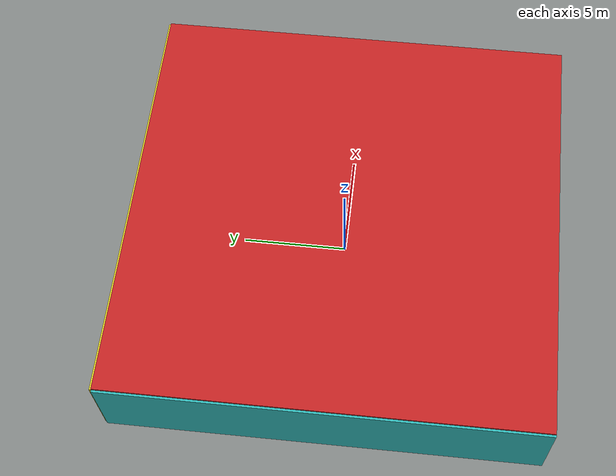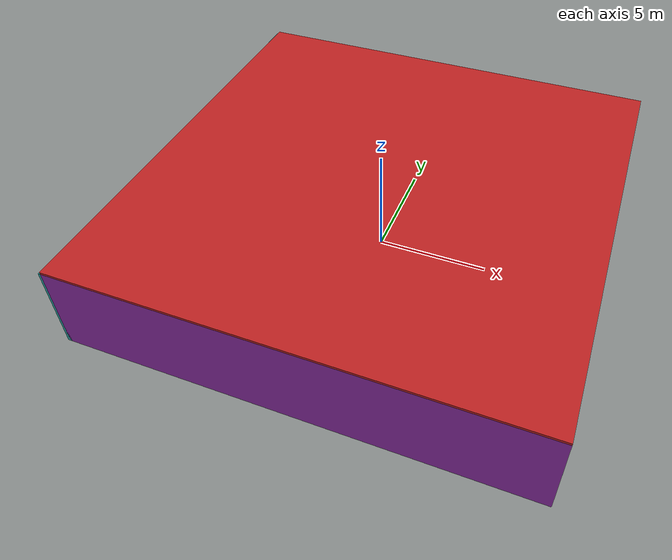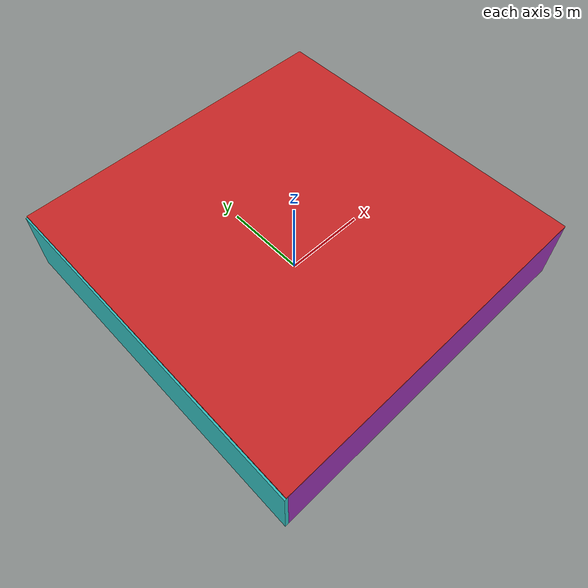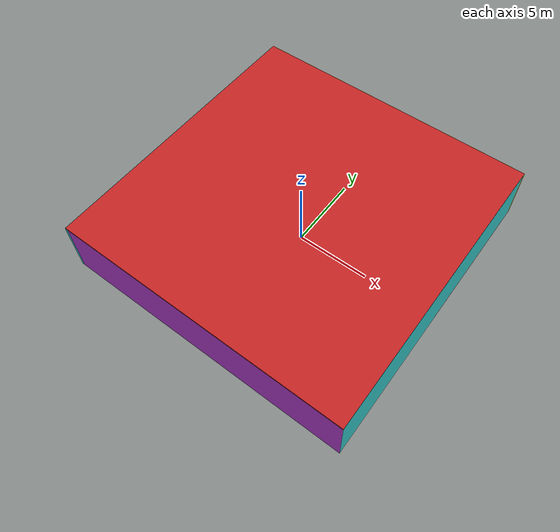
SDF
<sdf version="1.4">
 <world name="default">
  <physics type="ode">
   <max_step_size>0.001</max_step_size>
   <real_time_factor>1</real_time_factor>
   <real_time_update_rate>1000</real_time_update_rate>
   <gravity>0 0 -9.8</gravity>
  </physics>
  <scene><ambient>0.4 0.4 0.4 1</ambient><background>0.7 0.7 0.7 1</background><shadows>1</shadows></scene>
  <model name="Surrounding">
   <static>1</static>
   <link name="Ceiling">
    <collision name="Ceiling_Collision"><geometry><box><size>20 20 0.1</size></box></geometry></collision>
    <visual name="Ceiling_Visual">
     <geometry><box><size>20 20 0.1</size></box></geometry>
     <material>
      <script><uri>file://media/materials/scripts/gazebo.material</uri><name>Gazebo/Red</name></script>
     </material>
    </visual>
    <pose>0 0 4.05 0 0 0</pose>
   </link>
   <link name="Wall_South">
    <collision name="Wall_South_Collision">
     <geometry><box><size>20 0 4</size></box></geometry>
     <pose>0 0 2 0 -0 0</pose>
    </collision>
    <visual name="Wall_South_Visual">
     <pose>0 0 2 0 -0 0</pose>
     <geometry><box><size>20 0 4</size></box></geometry>
     <material>
      <script><uri>file://media/materials/scripts/gazebo.material</uri><name>Gazebo/Purple</name></script>
     </material>
    </visual>
    <velocity_decay><linear>0</linear><angular>0</angular></velocity_decay>
    <pose>0 -10 0 0 -0 0</pose>
   </link>
   <link name="Wall_East">
    <collision name="Wall_21_Collision">
     <geometry><box><size>20 0 4</size></box></geometry>
     <pose>0 0 2 0 -0 0</pose>
    </collision>
    <visual name="Wall_21_Visual">
     <pose>0 0 2 0 -0 0</pose>
     <geometry><box><size>20 0 4</size></box></geometry>
     <material>
      <script>
       <uri>file://media/materials/scripts/gazebo.material</uri>
       <name>Gazebo/TurquoiseGlowOutline</name>
      </script>
     </material>
    </visual>
    <velocity_decay><linear>0</linear><angular>0</angular></velocity_decay>
    <pose>10 0 0 0 -0 1.5708</pose>
   </link>
   <link name="Wall_North">
    <collision name="Wall_22_Collision">
     <geometry><box><size>20 0.2 4</size></box></geometry>
     <pose>0 0 2 0 -0 0</pose>
    </collision>
    <visual name="Wall_22_Visual">
     <pose>0 0 2 0 -0 0</pose>
     <geometry><box><size>20 0.2 4</size></box></geometry>
     <material>
      <script><uri>file://media/materials/scripts/gazebo.material</uri><name>Gazebo/Yellow</name></script>
     </material>
    </visual>
    <velocity_decay><linear>0</linear><angular>0</angular></velocity_decay>
    <pose>0 10 0 0 -0 0</pose>
   </link>
   <link name="Wall_West">
    <collision name="Wall_23_Collision">
     <geometry><box><size>20 0.2 4</size></box></geometry>
     <pose>0 0 2 0 -0 0</pose>
    </collision>
    <visual name="Wall_23_Visual">
     <pose>0 0 2 0 -0 0</pose>
     <geometry><box><size>20 0.2 4</size></box></geometry>
     <material>
      <script><uri>file://media/materials/scripts/gazebo.material</uri><name>Gazebo/TurquoiseGlow</name></script>
     </material>
    </visual>
    <velocity_decay><linear>0</linear><angular>0</angular></velocity_decay>
    <pose>-10 0 0 0 0 -1.5708</pose>
   </link>
   <link name="Ground_link">
    <collision name="collision">
     <pose>0 0 .05 0 -0 0</pose>
     <geometry><box><size>20 20 0.1</size></box></geometry>
    </collision>
    <visual name="visual">
     <pose>0 0 .05 0 -0 0</pose>
     <geometry><box><size>20 20 0.1</size></box></geometry>
     <material>
      <script><uri>file://media/materials/scripts/gazebo.material</uri><name>Gazebo/White</name></script>
     </material>
    </visual>
   </link>
   <static>1</static>
  </model>
  <spherical_coordinates>
   <surface_model>EARTH_WGS84</surface_model>
   <latitude_deg>0</latitude_deg>
   <longitude_deg>0</longitude_deg>
   <elevation>0</elevation>
   <heading_deg>0</heading_deg>
  </spherical_coordinates>
  <light name="lightball_0" type="diffuse">
   <diffuse>0.8 0.8 0.8 1</diffuse>
   <specular>0.2 0.2 0.2 1</specular>
   <attenuation>
    <range>100</range>
    <constant>0.7</constant>
    <linear>0.01</linear>
    <quadratic>0.001</quadratic>
   </attenuation>
   <direction>-0.5 0.1 -0.9</direction>
   <pose>-7.70413943704 4.99451639628 1.53148417981 0 0 0</pose>
  </light>
  <light name="lightball_1" type="diffuse">
   <diffuse>0.8 0.8 0.8 1</diffuse>
   <specular>0.2 0.2 0.2 1</specular>
   <attenuation>
    <range>100</range>
    <constant>0.7</constant>
    <linear>0.01</linear>
    <quadratic>0.001</quadratic>
   </attenuation>
   <direction>-0.5 0.1 -0.9</direction>
   <pose>7.04834642821 7.91387126275 3.18051801165 0 0 0</pose>
  </light>
  <light name="lightball_2" type="diffuse">
   <diffuse>0.8 0.8 0.8 1</diffuse>
   <specular>0.2 0.2 0.2 1</specular>
   <attenuation>
    <range>100</range>
    <constant>0.7</constant>
    <linear>0.01</linear>
    <quadratic>0.001</quadratic>
   </attenuation>
   <direction>-0.5 0.1 -0.9</direction>
   <pose>4.39726491051 -3.23151023774 1.29022352144 0 0 0</pose>
  </light>
  <light name="lightball_3" type="diffuse">
   <diffuse>0.8 0.8 0.8 1</diffuse>
   <specular>0.2 0.2 0.2 1</specular>
   <attenuation>
    <range>100</range>
    <constant>0.7</constant>
    <linear>0.01</linear>
    <quadratic>0.001</quadratic>
   </attenuation>
   <direction>-0.5 0.1 -0.9</direction>
   <pose>-1.62037810263 5.85066471919 1.69133503747 0 0 0</pose>
  </light>
  <light name="lightball_4" type="diffuse">
   <diffuse>0.8 0.8 0.8 1</diffuse>
   <specular>0.2 0.2 0.2 1</specular>
   <attenuation>
    <range>100</range>
    <constant>0.7</constant>
    <linear>0.01</linear>
    <quadratic>0.001</quadratic>
   </attenuation>
   <direction>-0.5 0.1 -0.9</direction>
   <pose>-8.66460660316 9.34199065034 3.34016011213 0 0 0</pose>
  </light>
  <light name="lightball_5" type="diffuse">
   <diffuse>0.8 0.8 0.8 1</diffuse>
   <specular>0.2 0.2 0.2 1</specular>
   <attenuation>
    <range>100</range>
    <constant>0.7</constant>
    <linear>0.01</linear>
    <quadratic>0.001</quadratic>
   </attenuation>
   <direction>-0.5 0.1 -0.9</direction>
   <pose>-2.69457767509 -4.62124659907 3.50809553203 0 0 0</pose>
  </light>
  <light name="lightball_6" type="diffuse">
   <diffuse>0.8 0.8 0.8 1</diffuse>
   <specular>0.2 0.2 0.2 1</specular>
   <attenuation>
    <range>100</range>
    <constant>0.7</constant>
    <linear>0.01</linear>
    <quadratic>0.001</quadratic>
   </attenuation>
   <direction>-0.5 0.1 -0.9</direction>
   <pose>-6.18936399888 1.19039626545 3.8301429433 0 0 0</pose>
  </light>
  <light name="lightball_7" type="diffuse">
   <diffuse>0.8 0.8 0.8 1</diffuse>
   <specular>0.2 0.2 0.2 1</specular>
   <attenuation>
    <range>100</range>
    <constant>0.7</constant>
    <linear>0.01</linear>
    <quadratic>0.001</quadratic>
   </attenuation>
   <direction>-0.5 0.1 -0.9</direction>
   <pose>8.00914783046 6.29313290713 0.799501948972 0 0 0</pose>
  </light>
  <light name="lightball_8" type="diffuse">
   <diffuse>0.8 0.8 0.8 1</diffuse>
   <specular>0.2 0.2 0.2 1</specular>
   <attenuation>
    <range>100</range>
    <constant>0.7</constant>
    <linear>0.01</linear>
    <quadratic>0.001</quadratic>
   </attenuation>
   <direction>-0.5 0.1 -0.9</direction>
   <pose>-5.00789015104 3.42772522966 1.14754965534 0 0 0</pose>
  </light>
  <light name="lightball_9" type="diffuse">
   <diffuse>0.8 0.8 0.8 1</diffuse>
   <specular>0.2 0.2 0.2 1</specular>
   <attenuation>
    <range>100</range>
    <constant>0.7</constant>
    <linear>0.01</linear>
    <quadratic>0.001</quadratic>
   </attenuation>
   <direction>-0.5 0.1 -0.9</direction>
   <pose>4.3592187702 6.53041714926 0.994708358217 0 0 0</pose>
  </light>
  <light name="lightball_10" type="diffuse">
   <diffuse>0.8 0.8 0.8 1</diffuse>
   <specular>0.2 0.2 0.2 1</specular>
   <attenuation>
    <range>100</range>
    <constant>0.7</constant>
    <linear>0.01</linear>
    <quadratic>0.001</quadratic>
   </attenuation>
   <direction>-0.5 0.1 -0.9</direction>
   <pose>5.47163164115 1.11924694898 2.33795681471 0 0 0</pose>
  </light>
  <light name="lightball_11" type="diffuse">
   <diffuse>0.8 0.8 0.8 1</diffuse>
   <specular>0.2 0.2 0.2 1</specular>
   <attenuation>
    <range>100</range>
    <constant>0.7</constant>
    <linear>0.01</linear>
    <quadratic>0.001</quadratic>
   </attenuation>
   <direction>-0.5 0.1 -0.9</direction>
   <pose>0.291836063018 -3.15778140271 3.19563844751 0 0 0</pose>
  </light>
  <light name="lightball_12" type="diffuse">
   <diffuse>0.8 0.8 0.8 1</diffuse>
   <specular>0.2 0.2 0.2 1</specular>
   <attenuation>
    <range>100</range>
    <constant>0.7</constant>
    <linear>0.01</linear>
    <quadratic>0.001</quadratic>
   </attenuation>
   <direction>-0.5 0.1 -0.9</direction>
   <pose>3.76201608932 -7.23156094922 3.82578582909 0 0 0</pose>
  </light>
  <include><uri>model://cabinet</uri><pose>-6.56637376111 3.41970802996 0 0 0 2.40764838908</pose></include>
  <include>
   <uri>model://robocup_3Dsim_goal</uri>
   <pose>-1.71704276788 -7.57204609688 0 0 0 1.77297172118</pose>
  </include>
  <include><uri>model://cabinet</uri><pose>-2.15703669637 2.24646140722 0 0 0 2.77629340511</pose></include>
  <include><uri>model://cabinet</uri><pose>1.26256029038 7.81371538621 0 0 0 3.00889070953</pose></include>
  <include><uri>model://cabinet</uri><pose>5.65130404889 -1.37785682738 0 0 0 1.10197281662</pose></include>
  <include><uri>model://cabinet</uri><pose>6.83016786465 -7.88088595347 0 0 0 1.99599723934</pose></include>
 </world>
</sdf>

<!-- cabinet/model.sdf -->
<sdf version="1.5">
  <model name="cabinet">
    <static>true</static>
    <link name="cabinet_bottom_plate">
      <inertial>
        <pose>0 0 -1 0 0 0</pose>
        <inertia>
          <ixx>2.050000</ixx>
          <ixy>0</ixy>
          <ixz>0</ixz>
          <iyy>2.050000</iyy>
          <iyz>0</iyz>
          <izz>2.050000</izz>
        </inertia>
        <mass>25.000000</mass>
      </inertial>
      <collision name="cabinet_bottom_plate_geom">
        <pose>0 0 0.010000 0 0 0</pose>
        <geometry>
          <box>
            <size>0.450000 0.450000 0.020000</size>
          </box>
        </geometry>
      </collision>
      <visual name="cabinet_bottom_plate_geom_visual">
        <pose>0 0 0.010000 0 0 0</pose>
        <geometry>
          <box>
            <size>0.450000 0.450000 0.020000</size>
          </box>
        </geometry>
        <material>
          <script>
            <uri>model://media/materials/scripts/gazebo.material</uri>
            <name>Gazebo/Wood</name>
          </script>
        </material>
      </visual>
      <collision name="cabinet_bottom_plate_geom_cabinet_back_plate">
        <pose>0.235000 0 0.510000 0 0 0</pose>
        <geometry>
          <box>
            <size>0.020000 0.450000 1.020000</size>
          </box>
        </geometry>
      </collision>
      <visual name="cabinet_bottom_plate_geom_cabinet_back_plate_visual">
        <pose>0.235000 0 0.510000 0 0 0</pose>
        <geometry>
          <box>
            <size>0.020000 0.450000 1.020000</size>
          </box>
        </geometry>
        <material>
          <script>
            <uri>model://media/materials/scripts/gazebo.material</uri>
            <name>Gazebo/Wood</name>
          </script>
        </material>
      </visual>
      <collision name="cabinet_bottom_plate_geom_cabinet_left_plate">
        <pose>0 0.235000 0.510000 0 0 0</pose>
        <geometry>
          <box>
            <size>0.450000 0.020000 1.020000</size>
          </box>
        </geometry>
      </collision>
      <visual name="cabinet_bottom_plate_geom_cabinet_left_plate_visual">
        <pose>0 0.235000 0.510000 0 0 0</pose>
        <geometry>
          <box>
            <size>0.450000 0.020000 1.020000</size>
          </box>
        </geometry>
        <material>
          <script>
            <uri>model://media/materials/scripts/gazebo.material</uri>
            <name>Gazebo/Wood</name>
          </script>
        </material>
      </visual>
      <collision name="cabinet_bottom_plate_geom_cabinet_middle_plate">
        <pose>0 0 0.510000 0 0 0</pose>
        <geometry>
          <box>
            <size>0.450000 0.450000 0.020000</size>
          </box>
        </geometry>
      </collision>
      <visual name="cabinet_bottom_plate_geom_cabinet_middle_plate_visual">
        <pose>0 0 0.510000 0 0 0</pose>
        <geometry>
          <box>
            <size>0.450000 0.450000 0.020000</size>
          </box>
        </geometry>
        <material>
          <script>
            <uri>model://media/materials/scripts/gazebo.material</uri>
            <name>Gazebo/Wood</name>
          </script>
        </material>
      </visual>
      <collision name="cabinet_bottom_plate_geom_cabinet_right_plate">
        <pose>0 -0.235000 0.510000 0 0 0</pose>
        <geometry>
          <box>
            <size>0.450000 0.020000 1.020000</size>
          </box>
        </geometry>
      </collision>
      <visual name="cabinet_bottom_plate_geom_cabinet_right_plate_visual">
        <pose>0 -0.235000 0.510000 0 0 0</pose>
        <geometry>
          <box>
            <size>0.450000 0.020000 1.020000</size>
          </box>
        </geometry>
        <material>
          <script>
            <uri>model://media/materials/scripts/gazebo.material</uri>
            <name>Gazebo/Wood</name>
          </script>
        </material>
      </visual>
      <collision name="cabinet_bottom_plate_geom_cabinet_top_plate">
        <pose>0 0 1.010000 0 0 0</pose>
        <geometry>
          <box>
            <size>0.450000 0.450000 0.020000</size>
          </box>
        </geometry>
      </collision>
      <visual name="cabinet_bottom_plate_geom_cabinet_top_plate_visual">
        <pose>0 0 1.010000 0 0 0</pose>
        <geometry>
          <box>
            <size>0.450000 0.450000 0.020000</size>
          </box>
        </geometry>
        <material>
          <script>
            <uri>model://media/materials/scripts/gazebo.material</uri>
            <name>Gazebo/Wood</name>
          </script>
        </material>
      </visual>
    </link>
  </model>
</sdf>

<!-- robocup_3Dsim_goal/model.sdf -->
<sdf version="1.5">
  <model name="robocup_3d_goal">
    <static>true</static>
    <link name="left_post">
      <pose>0 1.05 0.45 0 0 0</pose>
      <collision name="collision">
        <geometry>
          <cylinder>
            <radius>0.05</radius>
            <length>0.9</length>
          </cylinder>
        </geometry>
      </collision>
      <visual name="visual">
        <geometry>
          <cylinder>
            <radius>0.05</radius>
            <length>0.9</length>
          </cylinder>
        </geometry>
        <material>
          <script>
            <uri>file://media/materials/scripts/gazebo.material</uri>
            <name>Gazebo/ZincYellow</name>
          </script>
        </material>
      </visual>
    </link>
    <link name="left_support_horiz_lower">
      <pose>0.30 1.05 0.01 0 0 0</pose>
      <collision name="collision">
        <geometry>
          <box>
            <size>0.50 0.02 0.02</size>
          </box>
        </geometry>
      </collision>
      <visual name="visual">
        <geometry>
          <box>
            <size>0.50 0.02 0.02</size>
          </box>
        </geometry>
        <material>
          <script>
            <uri>file://media/materials/scripts/gazebo.material</uri>
            <name>Gazebo/White</name>
          </script>
        </material>
      </visual>
    </link>
    <link name="left_support_horiz_upper">
      <pose>0.30 1.05 0.79 0 0 0</pose>
      <collision name="collision">
        <geometry>
          <box>
            <size>0.50 0.02 0.02</size>
          </box>
        </geometry>
      </collision>
      <visual name="visual">
        <geometry>
          <box>
            <size>0.50 0.02 0.02</size>
          </box>
        </geometry>
        <material>
          <script>
            <uri>file://media/materials/scripts/gazebo.material</uri>
            <name>Gazebo/White</name>
          </script>
        </material>
      </visual>
    </link>
    <link name="left_support_vertical">
      <pose>0.56 1.05 0.4 0 1.5708 0</pose>
      <collision name="collision">
        <geometry>
          <box>
            <size>0.80 0.02 0.02</size>
          </box>
        </geometry>
      </collision>
      <visual name="visual">
        <geometry>
          <box>
            <size>0.80 0.02 0.02</size>
          </box>
        </geometry>
        <material>
          <script>
            <uri>file://media/materials/scripts/gazebo.material</uri>
            <name>Gazebo/White</name>
          </script>
        </material>
      </visual>
    </link>
    <link name="right_support_horiz_lower">
      <pose>0.30 -1.05 0.01 0 0 0</pose>
      <collision name="collision">
        <geometry>
          <box>
            <size>0.50 0.02 0.02</size>
          </box>
        </geometry>
      </collision>
      <visual name="visual">
        <geometry>
          <box>
            <size>0.50 0.02 0.02</size>
          </box>
        </geometry>
        <material>
          <script>
            <uri>file://media/materials/scripts/gazebo.material</uri>
            <name>Gazebo/White</name>
          </script>
        </material>
      </visual>
    </link>
    <link name="right_support_horiz_upper">
      <pose>0.30 -1.05 0.79 0 0 0</pose>
      <collision name="collision">
        <geometry>
          <box>
            <size>0.50 0.02 0.02</size>
          </box>
        </geometry>
      </collision>
      <visual name="visual">
        <geometry>
          <box>
            <size>0.50 0.02 0.02</size>
          </box>
        </geometry>
        <material>
          <script>
            <uri>file://media/materials/scripts/gazebo.material</uri>
            <name>Gazebo/White</name>
          </script>
        </material>
      </visual>
    </link>
    <link name="right_support_vertical">
      <pose>0.56 -1.05 0.4 0 1.5708 0</pose>
      <collision name="collision">
        <geometry>
          <box>
            <size>0.80 0.02 0.02</size>
          </box>
        </geometry>
      </collision>
      <visual name="visual">
        <geometry>
          <box>
            <size>0.80 0.02 0.02</size>
          </box>
        </geometry>
        <material>
          <script>
            <uri>file://media/materials/scripts/gazebo.material</uri>
            <name>Gazebo/White</name>
          </script>
        </material>
      </visual>
    </link>
    <link name="center_support_horiz_lower">
      <pose>0.56 0 0.01 0 1.5708 0</pose>
      <collision name="collision">
        <geometry>
          <box>
            <size>0.02 2.08 0.02</size>
          </box>
        </geometry>
      </collision>
      <visual name="visual">
        <geometry>
          <box>
            <size>0.02 2.08 0.02</size>
          </box>
        </geometry>
        <material>
          <script>
            <uri>file://media/materials/scripts/gazebo.material</uri>
            <name>Gazebo/White</name>
          </script>
        </material>
      </visual>
    </link>
    <link name="center_support_horiz_upper">
      <pose>0.56 0 0.79 0 1.5708 0</pose>
      <collision name="collision">
        <geometry>
          <box>
            <size>0.02 2.08 0.02</size>
          </box>
        </geometry>
      </collision>
      <visual name="visual">
        <geometry>
          <box>
            <size>0.02 2.08 0.02</size>
          </box>
        </geometry>
        <material>
          <script>
            <uri>file://media/materials/scripts/gazebo.material</uri>
            <name>Gazebo/White</name>
          </script>
        </material>
      </visual>
    </link>
    <link name="right_post">
      <pose>0 -1.05 0.45 0 0 0</pose>
      <collision name="collision">
        <geometry>
          <cylinder>
            <radius>0.05</radius>
            <length>0.9</length>
          </cylinder>
        </geometry>
      </collision>
      <visual name="visual">
        <geometry>
          <cylinder>
            <radius>0.05</radius>
            <length>0.9</length>
          </cylinder>
        </geometry>
        <material>
          <script>
            <uri>file://media/materials/scripts/gazebo.material</uri>
            <name>Gazebo/ZincYellow</name>
          </script>
        </material>
      </visual>
    </link>
    <link name="crossbar">
      <pose>0 0 0.85 1.57 1.57 0</pose>
      <collision name="collision">
        <geometry>
          <cylinder>
            <radius>0.05</radius>
            <length>2.0</length>
          </cylinder>
        </geometry>
      </collision>
      <visual name="visual">
        <geometry>
          <cylinder>
            <radius>0.05</radius>
            <length>2.0</length>
          </cylinder>
        </geometry>
        <material>
          <script>
            <uri>file://media/materials/scripts/gazebo.material</uri>
            <name>Gazebo/ZincYellow</name>
          </script>
        </material>
      </visual>
    </link>
    <link name="center_net">
      <pose>0.56 0 0.40 0 0 0</pose>
      <collision name="collision">
        <geometry>
          <box>
            <size>0.01 2.1 0.80</size>
          </box>
        </geometry>
      </collision>
      <visual name="visual">
        <geometry>
          <box>
            <size>0.01 2.1 0.80</size>
          </box>
        </geometry>
        <material>
          <script>
            <uri>model://../model_source/models/robocup09_spl_field/materials/scripts/</uri>
            <uri>model://../model_source/models/robocup09_spl_field/materials/textures/</uri>
            <name>RoboCup/Net</name>
          </script>
        </material>
      </visual>
    </link>
    <link name="left_net">
      <pose>0.30 1.05 0.40 0 0 0</pose>
      <collision name="collision">
        <geometry>
          <box>
            <size>0.50 0.01 0.76</size>
          </box>
        </geometry>
      </collision>
      <visual name="visual">
        <geometry>
          <box>
            <size>0.50 0.01 0.76</size>
          </box>
        </geometry>
        <material>
          <script>
            <uri>model://../model_source/models/robocup09_spl_field/materials/scripts/</uri>
            <uri>model://../model_source/models/robocup09_spl_field/materials/textures/</uri>
            <name>RoboCup/Net</name>
          </script>
        </material>
      </visual>
    </link>
    <link name="right_net">
      <pose>0.30 -1.05 0.40 0 0 0</pose>
      <collision name="collision">
        <geometry>
          <box>
            <size>0.50 0.01 0.76</size>
          </box>
        </geometry>
      </collision>
      <visual name="visual">
        <geometry>
          <box>
            <size>0.50 0.01 0.76</size>
          </box>
        </geometry>
        <material>
          <script>
            <uri>model://../model_source/models/robocup09_spl_field/materials/scripts/</uri>
            <uri>model://../model_source/models/robocup09_spl_field/materials/textures/</uri>
            <name>RoboCup/Net</name>
          </script>
        </material>
      </visual>
    </link>
  </model>
</sdf>
